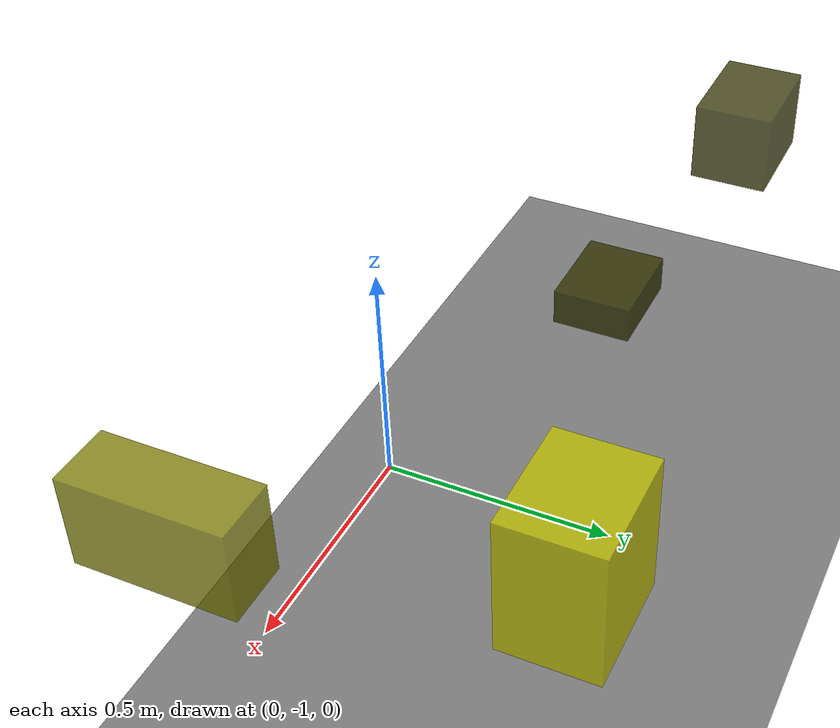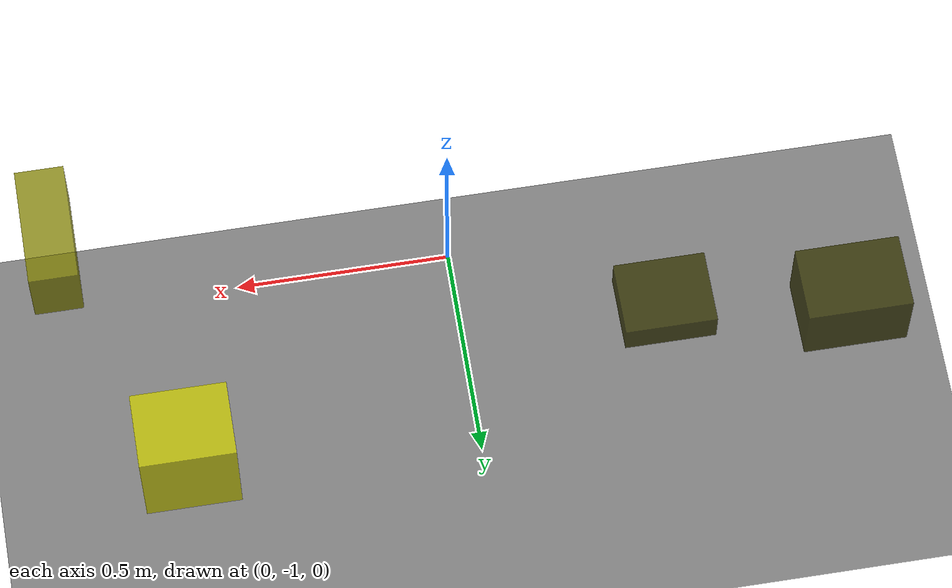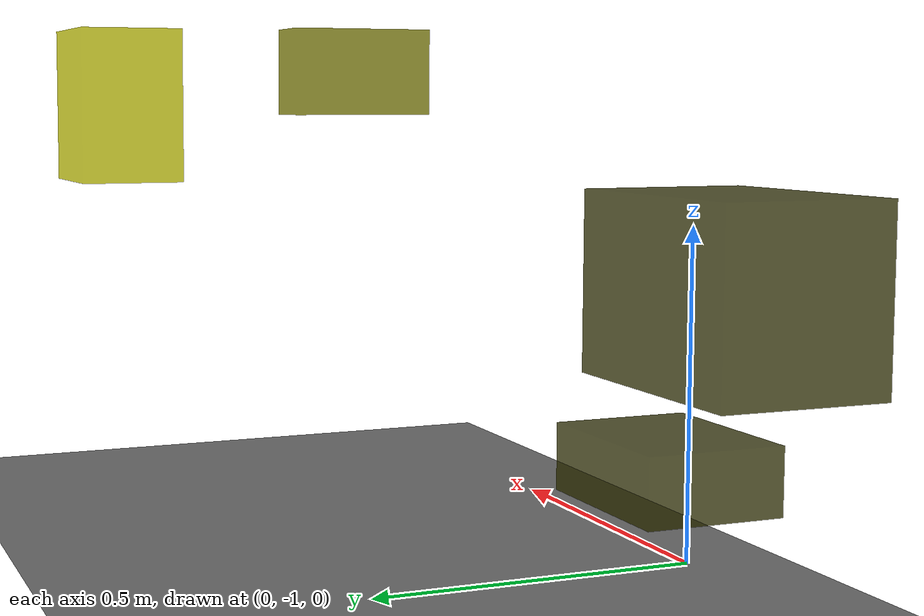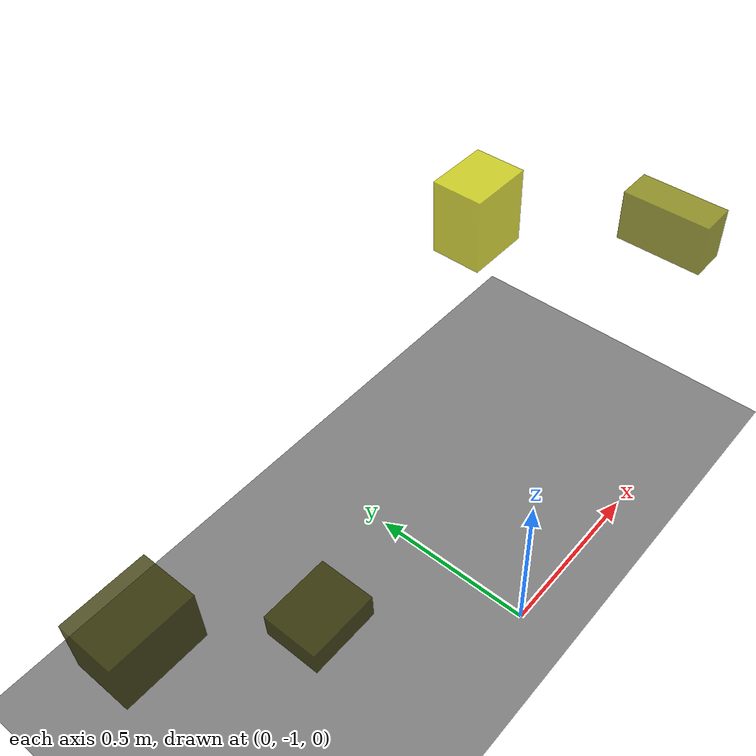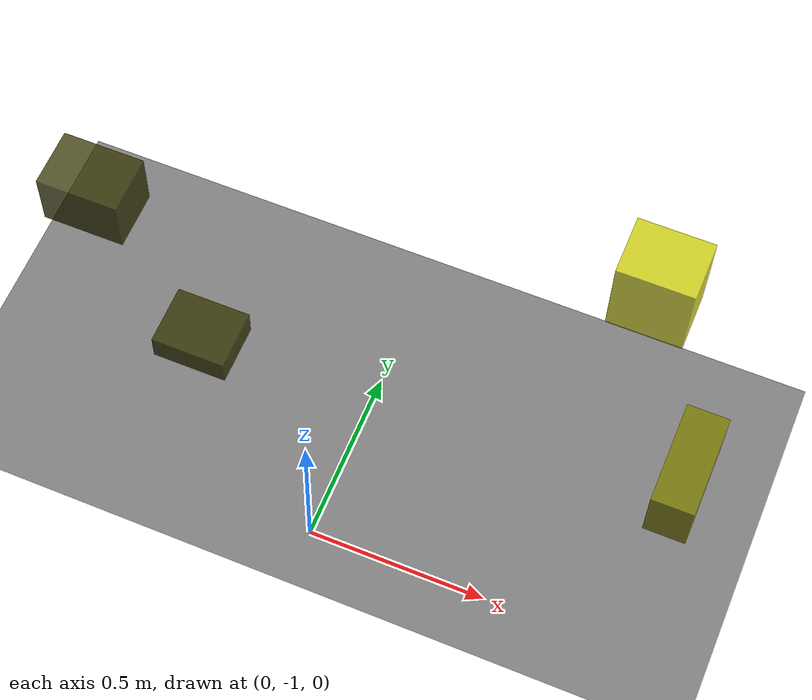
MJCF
<?xml version="1.0"?>
<mujoco model="obstacle_scene">
  <compiler angle="radian" coordinate="local"/>
  <option timestep="0.001" gravity="0 0 -9.81"/>

  <asset>
    <material name="obstacle_mat" rgba="0.8 0.8 0.0 0.8"/>
    <material name="ground_mat" rgba="0.5 0.5 0.5 1"/>
  </asset>

  <worldbody>
    <!-- Ground plane -->
    <geom name="ground" type="plane" size="3 3 0.1" material="ground_mat"/>

    <!-- Obstacles -->
    <body name="obstacle_0" pos="-0.449784 -0.684613 0.262144">
      <geom name="obs_0" type="box" size="0.104728 0.085304 0.040409" rgba="0.2 0.2 0.0 0.8"/>
    </body>
    <body name="obstacle_1" pos="0.898761 -0.816263 0.734487">
      <geom name="obs_1" type="box" size="0.053233 0.132672 0.079975" rgba="0.5 0.5 0.0 0.8"/>
    </body>
    <body name="obstacle_2" pos="0.670718 -0.309729 0.672576">
      <geom name="obs_2" type="box" size="0.103185 0.082710 0.124526" rgba="0.8 0.8 0.0 0.8"/>
    </body>
    <body name="obstacle_3" pos="-0.825371 -0.514471 0.513599">
      <geom name="obs_3" type="box" size="0.115607 0.083128 0.085615" rgba="0.2 0.2 0.0 0.8"/>
    </body>
  </worldbody>
</mujoco>
